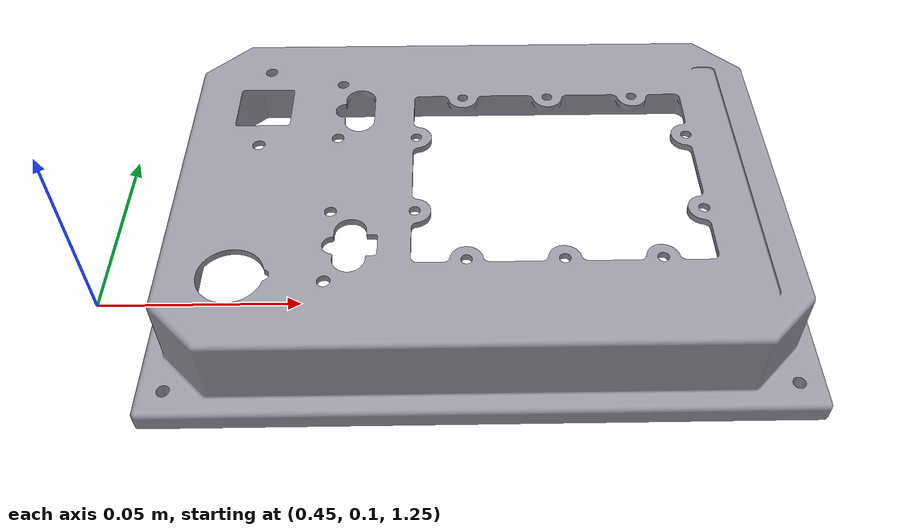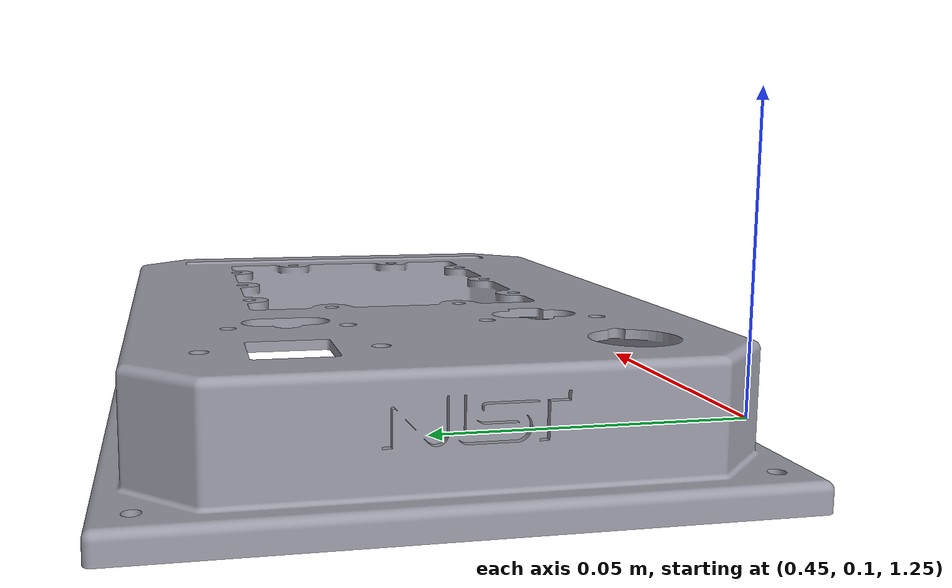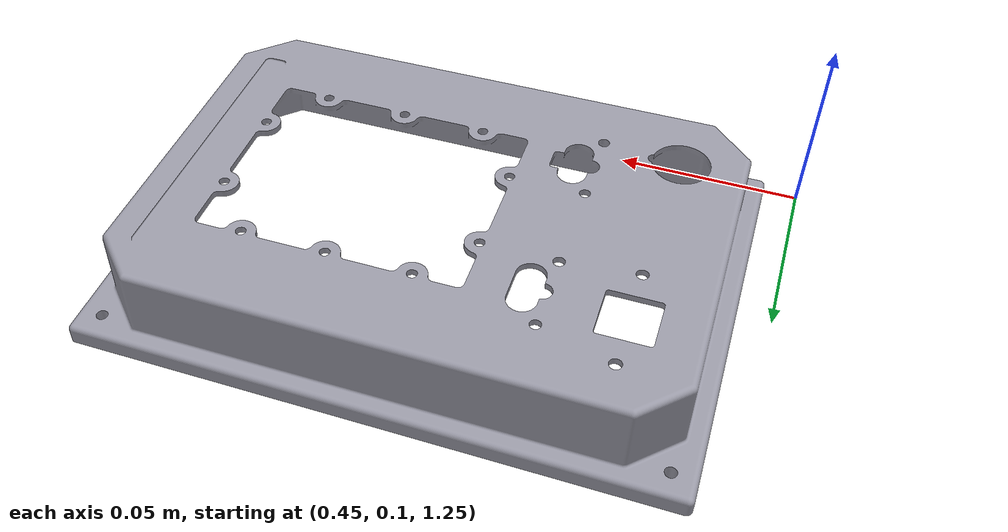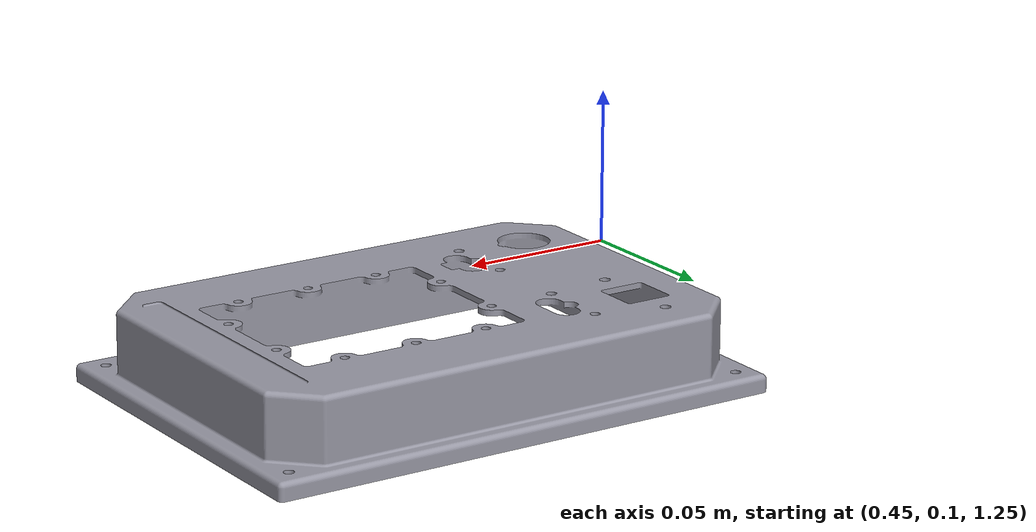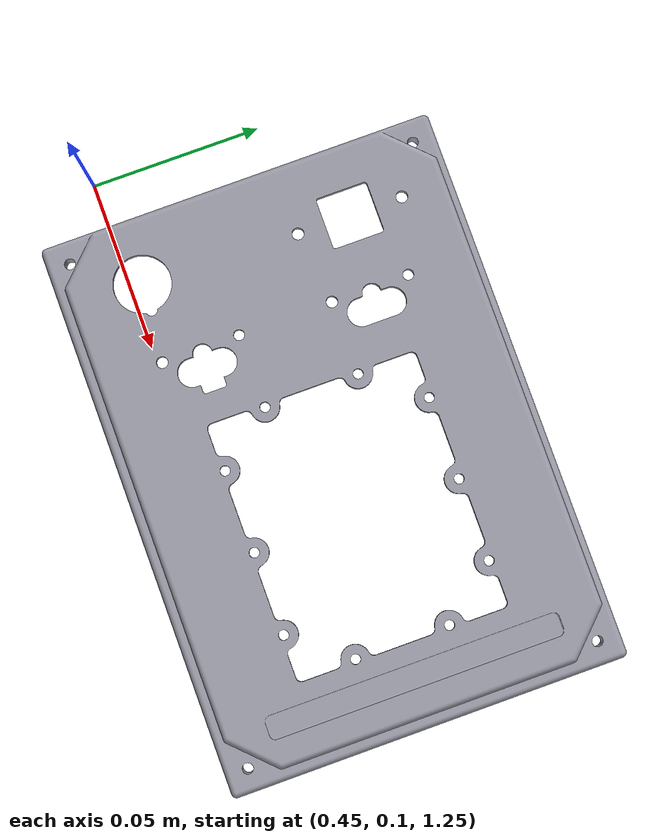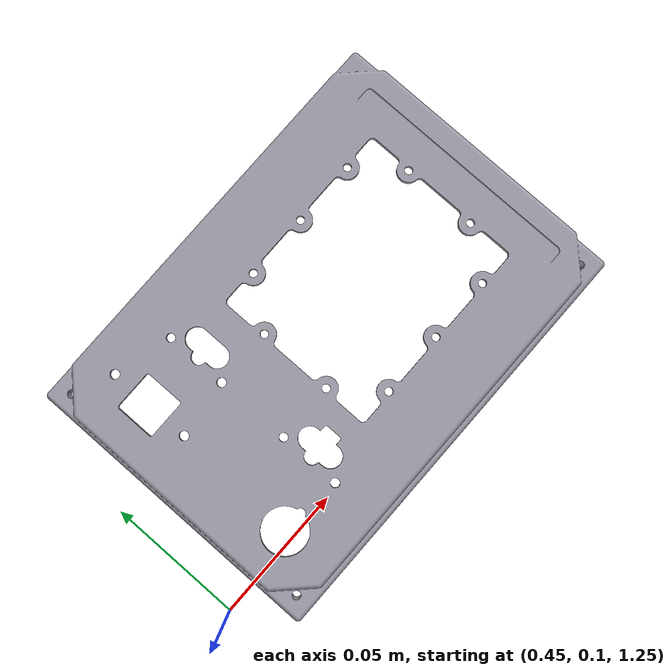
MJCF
<mujoco model="nist_lid">
  <asset>
    <material name="steel_visual_nist_lid" rgba="0.6 0.6 0.65 1.0" specular="0.8" shininess="0.9" reflectance="0.6"/>
    <material name="steel_nist_lid" rgba="0.6 0.6 0.65 0.0" specular="0.8" shininess="0.9" reflectance="0.6"/>
    <mesh name="nist_lid" file="../objects/bigym/nist_lid/nist_lid.STL" scale="0.00055 0.00055 0.00055"/>
    <mesh name="nist_lid_updated" file="../objects/bigym/nist_lid/nist_lid2.STL" scale="0.00055 0.00055 0.00055"/>
  </asset>

  <default class="main">
    <default class="nist_lid">
      <default class="nist_lid_visual">
        <geom type="mesh" contype="0" conaffinity="0" group="2"/>
      </default>
      <default class="nist_lid_collision">
        <geom type="mesh" group="3" solref="0.004" solimp="0.95 0.98" condim="3"/>
      </default>
    </default>
  </default>

  <worldbody>
    <body name="nist_lid" pos="0.63 0.2 1.23" quat="0 0 0 1">
      <freejoint/>
      <geom class="nist_lid_visual" mesh="nist_lid"
            material="steel_visual_nist_lid" mass="0.2"/>
      <geom class="nist_lid_collision" mesh="nist_lid_updated"
            material="steel_nist_lid" />
    </body>
  </worldbody>
</mujoco>
